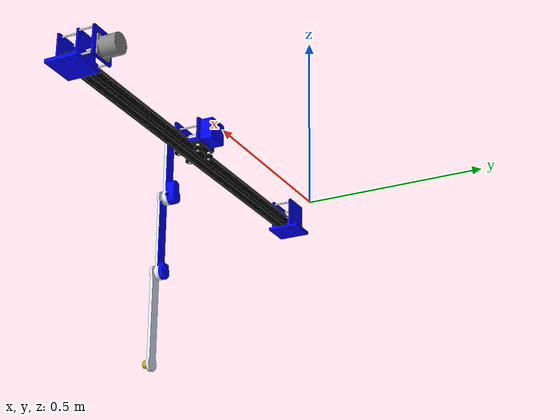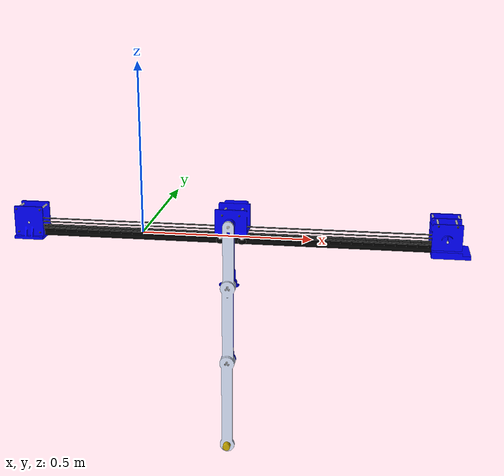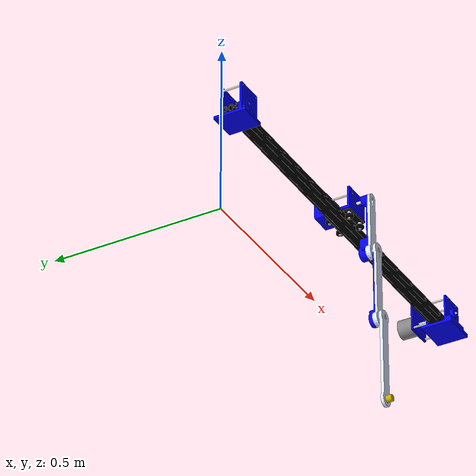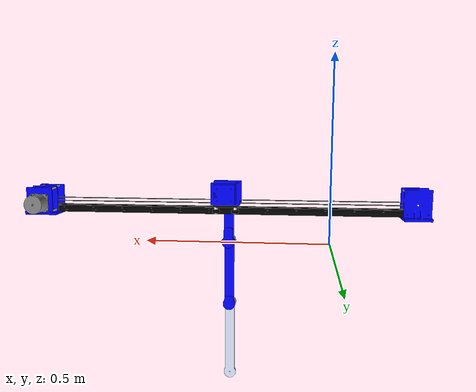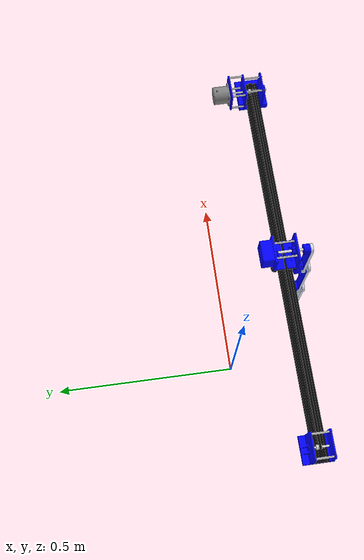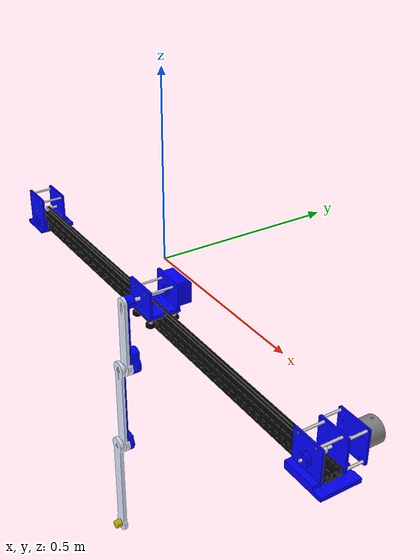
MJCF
<mujoco model="TripleInvertedPendulum">
    <compiler angle="radian" balanceinertia="true" discardvisual="false" meshdir="./meshes/" texturedir="./textures"/>
    <size njmax="500" nconmax="100" />

    <option timestep="0.015">
		<flag warmstart="enable" />
	</option>

    <!-- Default parameters -->
    <default class="arm">
        <joint damping='0.001'/>
    </default>

    <!-- Assets -->
    <asset>
        <include file="./include/tip/assets.xml"/>
        <include file="./include/world/assets_white.xml"/>
        <material name="rail" shininess="0.03" specular="0.4" reflectance="100" rgba="0.01 0.01 0.01 1"/>
        <material name="abolt" shininess="0.03" specular="0.4" reflectance="50" rgba="0.8 0.8 0.8 1"/>
        <material name="3dpart" shininess="0.0" specular="0.0" reflectance="0"/>
    </asset>

    <!-- World body -->

    <worldbody>
        <!-- World -->
        <light directional="true" ambient="0.2 0.2 0.2" diffuse="0.8 0.8 0.8" specular="0.3 0.3 0.3" castshadow="false" pos="0 3 3" dir="0 0 -1" name="light0" />

        <!-- Robot -->
        <body name="link0" pos="0.3 -0.2 0.07" quat="0.7071067811865476 0.7071067811865476 0 0">
            <geom type="mesh" material="rail" mesh="base_link" />
            <geom type="mesh" rgba="0 0 1 1" mesh="right_zip" material="3dpart"/>
            <geom type="mesh" rgba="0.921 0.921 0.921 1" mesh="support1" />
            <geom type="mesh" rgba="0.921 0.921 0.921 1" mesh="support2" />
            <geom type="mesh" rgba="0.921 0.921 0.921 1" mesh="support3" />
            <geom type="mesh" rgba="0.921 0.921 0.921 1" mesh="support4" />
            <geom type="mesh" rgba="0.921 0.921 0.921 1" mesh="support5" />
            <geom type="mesh" rgba="0.921 0.921 0.921 1" mesh="support6" />
            <geom type="mesh" rgba="0 0 1 1" mesh="motor_plate" material="3dpart"/>
            <geom type="mesh" rgba="0.521 0.521 0.521 1" mesh="motor" />
            <geom type="mesh" rgba="0.921 0.921 0.921 1" mesh="shaftR" />
            <geom type="mesh" rgba="0.894118 0.909804 0.929412 1" mesh="fullyR" />
            <geom type="mesh" rgba="0.01 0.01 0.01 1" mesh="bolt1" />
            <geom type="mesh" rgba="0.01 0.01 0.01 1" mesh="bolt2" />
            <geom type="mesh" rgba="0 0 1 1" mesh="left_zip" material="3dpart"/>
            <geom type="mesh" rgba="0.921 0.921 0.921 1" mesh="spl1" />
            <geom type="mesh" rgba="0.921 0.921 0.921 1" mesh="spl2" />
            <geom type="mesh" rgba="0.921 0.921 0.921 1" mesh="shaftL" />
            <geom type="mesh" rgba="0.894118 0.909804 0.929412 1" mesh="fullyL" />
            <geom type="mesh" rgba="0.01 0.01 0.01 1" mesh="belt" contype="0" conaffinity="0" group="1" />
            <geom type="mesh" rgba="0.01 0.01 0.01 1" mesh="bolt3" />
            <geom type="mesh" rgba="0.01 0.01 0.01 1" mesh="bolt4" />
            <geom type="mesh" rgba="0.01 0.01 0.01 1" mesh="bolt5" />
            <geom type="mesh" rgba="0.01 0.01 0.01 1" mesh="bolt6" />
            <body name="cartPlate" pos="0 0 0">
                <inertial pos="-0.000641778 0.0328562 -0.0238529" quat="0.697709 0.123271 -0.113179 0.696561" mass="0.486" diaginertia="0.000536826 0.000527878 0.000278203" />
                <joint name="cartJoint" type="slide" pos="0 0 0" axis="1 0 0" />
                <geom type="mesh" rgba="0.01 0.01 0.01 1" mesh="cartPlate" />
                <geom type="mesh" rgba="0.921 0.921 0.921 1" mesh="wheelLag1" />
                <geom type="mesh" rgba="0.01 0.01 0.01 1" mesh="wh1" material="3dpart"/>
                <geom type="mesh" rgba="0.921 0.921 0.921 1" mesh="nut1" />
                <geom type="mesh" rgba="0.921 0.921 0.921 1" mesh="wheelLag2" />
                <geom type="mesh" rgba="0.01 0.01 0.01 1" mesh="wh2" material="3dpart"/>
                <geom type="mesh" rgba="0.921 0.921 0.921 1" mesh="nut2" />
                <geom type="mesh" rgba="0.921 0.921 0.921 1" mesh="wheelLag3" />
                <geom type="mesh" rgba="0.01 0.01 0.01 1" mesh="wh3" material="3dpart"/>
                <geom type="mesh" rgba="0.921 0.921 0.921 1" mesh="nut3" />
                <geom type="mesh" rgba="0.921 0.921 0.921 1" mesh="wheelLag4" />
                <geom type="mesh" rgba="0.01 0.01 0.01 1" mesh="wh4" material="3dpart"/>
                <geom type="mesh" rgba="0.921 0.921 0.921 1" mesh="nut4" />
                <geom type="mesh" rgba="0 0 1 1" mesh="cart" material="3dpart"/>
                <geom type="mesh" rgba="0.921 0.921 0.921 1" mesh="csp1" />
                <geom type="mesh" rgba="0.921 0.921 0.921 1" mesh="csp2" />
                <geom type="mesh" rgba="0.01 0.01 0.01 1" mesh="cbolt1" />
                <geom type="mesh" rgba="0.01 0.01 0.01 1" mesh="cbolt2" />
                <body name="cartShaft" pos="-0.000295182 0.0440975 0.083">
                    <inertial pos="6.51407e-08 -0.0988795 -0.0153605" quat="0.70715 0.707064 0 0" mass="0.209031904484507" diaginertia="0.000546218 0.000528776 3.87201e-05" />
                    <joint name="armJoint1" pos="0 0 0" axis="0 0 1" class="arm" />
                    <geom type="mesh" rgba="0.921 0.921 0.921 1" mesh="cartShaft" />
                    <geom type="mesh" rgba="0.86666667 0.90980392 1 1" mesh="arm1w" material="3dpart"/>
                    <geom type="mesh" rgba="0 0 1 1" mesh="arm1b" material="3dpart"/>
                    <body name="arm2w" pos="0 -0.165 0.00506538">
                        <inertial pos="4.22529e-10 -0.126718 0.00216703" quat="0.490788 0.509045 -0.509045 0.490788" mass="0.1145259713644" diaginertia="0.000548986 0.00054329 1.09403e-05" />
                        <joint name="armJoint2" pos="0 0 0" axis="0 0 1" class="arm" />
                        <geom type="mesh" rgba="0.86666667 0.90980392 1 1" mesh="arm2w" material="3dpart"/>
                        <geom type="mesh" rgba="0 0 1 1" mesh="arm2b" material="3dpart"/>
                        <geom type="mesh" mesh="abolt1" material="abolt" />
                        <geom type="mesh" mesh="abolt2" material="abolt" />
                        <geom type="mesh" mesh="abolt3" material="abolt" />
                        <body name="arm3w" pos="0 -0.21 0.0235346">
                            <inertial pos="0 -0.128496 -0.00363083" quat="0.503518 0.496457 -0.496457 0.503518" mass="0.146790233805106" diaginertia="0.00060915 0.000604009 7.58388e-06" />
                            <joint name="armJoint3" pos="0 0 0" axis="0 0 1" class="arm" />
                            <geom type="mesh" rgba="0.86666667 0.90980392 1 1" mesh="arm3w" material="3dpart"/>
                            <geom type="mesh" rgba="0.8 0.6745 0 1" mesh="weight" />
                            <geom type="mesh" mesh="abolt4" material="abolt" />
                            <geom type="mesh" mesh="abolt5" material="abolt" />
                            <geom type="mesh" mesh="abolt6" material="abolt" />
                        </body>
                    </body>
                </body>
            </body>
        </body>
    </worldbody>
</mujoco>

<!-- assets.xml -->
<mujocoinclude>

    <mesh name="base_link" file="tip/base_link.STL" />
    <mesh name="right_zip" file="tip/right_zip.STL" />
    <mesh name="support1" file="tip/support1.STL" />
    <mesh name="support2" file="tip/support2.STL" />
    <mesh name="support3" file="tip/support3.STL" />
    <mesh name="support4" file="tip/support4.STL" />
    <mesh name="support5" file="tip/support5.STL" />
    <mesh name="support6" file="tip/support6.STL" />
    <mesh name="motor_plate" file="tip/motor_plate.STL" />
    <mesh name="motor" file="tip/motor.STL" />
    <mesh name="shaftR" file="tip/shaftR.STL" />
    <mesh name="fullyR" file="tip/fullyR.STL" />
    <mesh name="bolt1" file="tip/bolt1.STL" />
    <mesh name="bolt2" file="tip/bolt2.STL" />
    <mesh name="left_zip" file="tip/left_zip.STL" />
    <mesh name="spl1" file="tip/spl1.STL" />
    <mesh name="spl2" file="tip/spl2.STL" />
    <mesh name="shaftL" file="tip/shaftL.STL" />
    <mesh name="fullyL" file="tip/fullyL.STL" />
    <mesh name="belt" file="tip/belt.STL" />
    <mesh name="bolt3" file="tip/bolt3.STL" />
    <mesh name="bolt4" file="tip/bolt4.STL" />
    <mesh name="bolt5" file="tip/bolt5.STL" />
    <mesh name="bolt6" file="tip/bolt6.STL" />
    <mesh name="cartPlate" file="tip/cartPlate.STL" />
    <mesh name="wheelLag1" file="tip/wheelLag1.STL" />
    <mesh name="wh1" file="tip/wh1.STL" />
    <mesh name="nut1" file="tip/nut1.STL" />
    <mesh name="wheelLag2" file="tip/wheelLag2.STL" />
    <mesh name="wh2" file="tip/wh2.STL" />
    <mesh name="nut2" file="tip/nut2.STL" />
    <mesh name="wheelLag3" file="tip/wheelLag3.STL" />
    <mesh name="wh3" file="tip/wh3.STL" />
    <mesh name="nut3" file="tip/nut3.STL" />
    <mesh name="wheelLag4" file="tip/wheelLag4.STL" />
    <mesh name="wh4" file="tip/wh4.STL" />
    <mesh name="nut4" file="tip/nut4.STL" />
    <mesh name="cart" file="tip/cart.STL" />
    <mesh name="csp1" file="tip/csp1.STL" />
    <mesh name="csp2" file="tip/csp2.STL" />
    <mesh name="cartShaft" file="tip/cartShaft.STL" />
    <mesh name="arm1w" file="tip/arm1w.STL" />
    <mesh name="arm1b" file="tip/arm1b.STL" />
    <mesh name="arm2w" file="tip/arm2w.STL" />
    <mesh name="arm2b" file="tip/arm2b.STL" />
    <mesh name="arm3w" file="tip/arm3w.STL" />
    <mesh name="weight" file="tip/weight.STL" />
    <mesh name="abolt4" file="tip/abolt4.STL" />
    <mesh name="abolt5" file="tip/abolt5.STL" />
    <mesh name="abolt6" file="tip/abolt6.STL" />
    <mesh name="abolt1" file="tip/abolt1.STL" />
    <mesh name="abolt2" file="tip/abolt2.STL" />
    <mesh name="abolt3" file="tip/abolt3.STL" />
    <mesh name="cbolt1" file="tip/cbolt1.STL" />
    <mesh name="cbolt2" file="tip/cbolt2.STL" />

</mujocoinclude>

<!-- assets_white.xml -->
<mujocoinclude>
    <texture builtin="flat" height="1278" mark="cross" markrgb="1 1 1" name="texgeom" random="0.01" rgb1="0.8 0.6 0.4" rgb2="0.8 0.6 0.4" type="cube" width="127"/>
    <texture type="skybox" builtin="gradient" rgb1="1 1 1" rgb2="1 1 1" width="32" height="32"/>
</mujocoinclude>
